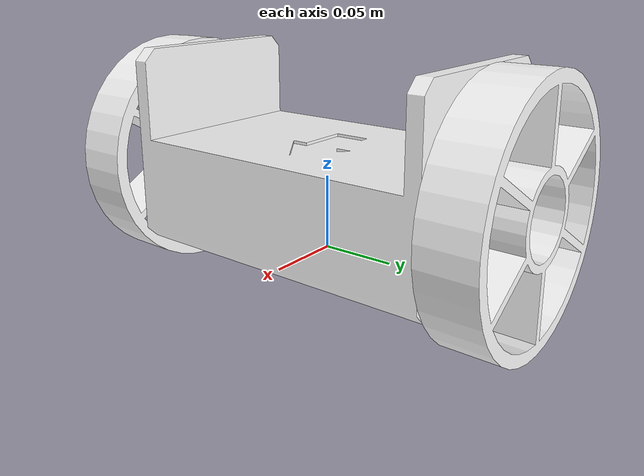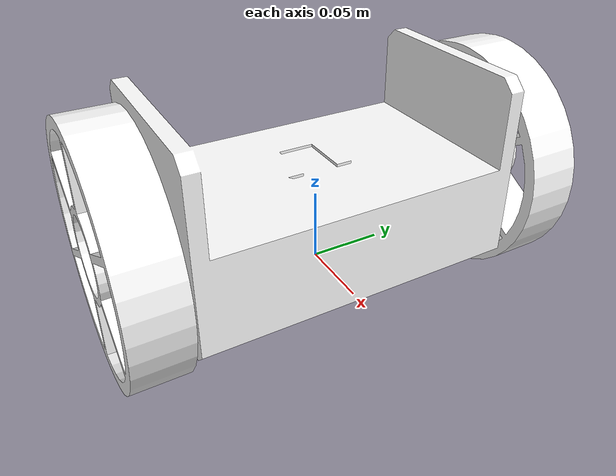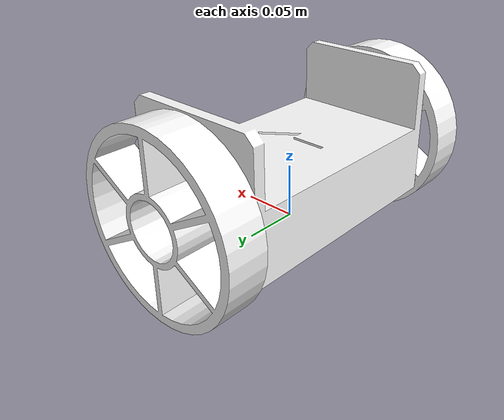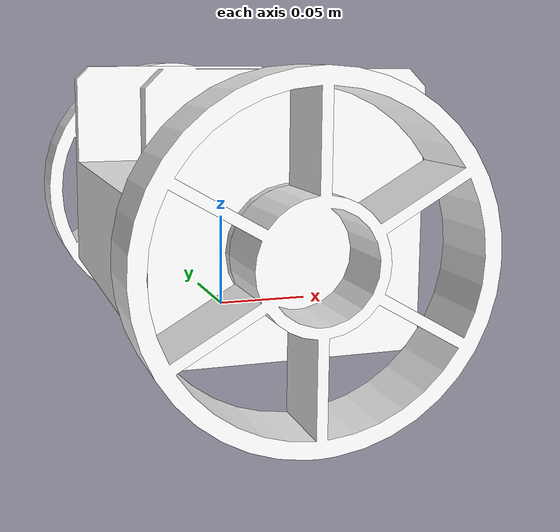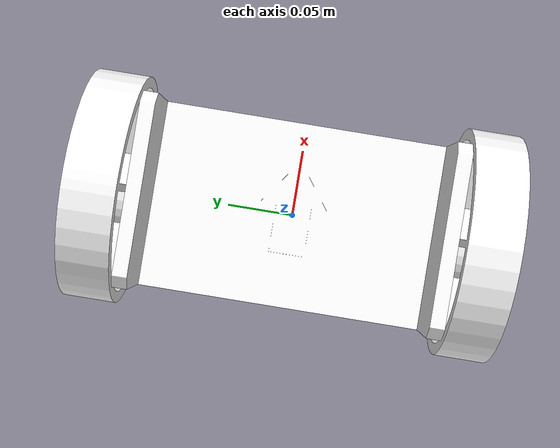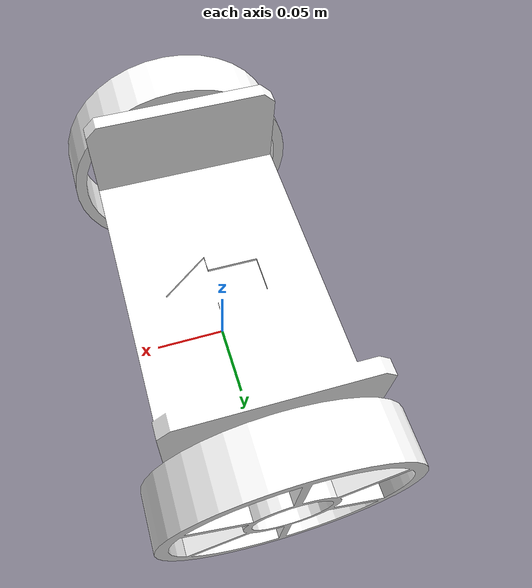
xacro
<?xml version="1.0"?>
<robot xmlns:xacro="http://www.ros.org/wiki/xacro" name="bp001">

  <!-- 引入原始机器人描述 -->
  <xacro:include
    filename="$(find bp001_description)/urdf/bp001_description.xacro"/>

  <!-- ========== Gazebo Sim 传感器与关节控制 ========== -->

  <gazebo reference="base_link">
    <sensor name="imu_sensor" type="imu">
      <always_on>true</always_on>
      <update_rate>400</update_rate>
      <topic>/imu</topic>
      <visualize>false</visualize>
    </sensor>
  </gazebo>

  <!-- 轮子摩擦（防止打滑） -->
  <gazebo reference="link_lw">
    <mu1>1.0</mu1>
    <mu2>1.0</mu2>
  </gazebo>

  <gazebo reference="link_rw">
    <mu1>1.0</mu1>
    <mu2>1.0</mu2>
  </gazebo>

  <!-- 输出 joint_state，方便 robot_state_publisher 闭环 -->
  <gazebo>
    <plugin
      filename="gz-sim-joint-state-publisher-system"
      name="gz::sim::systems::JointStatePublisher"/>
  </gazebo>

  <!-- 轮子关节速度控制器 -->
  <gazebo>
    <plugin
      filename="gz-sim-joint-controller-system"
      name="gz::sim::systems::JointController">
      <joint_name>joint_lw</joint_name>
      <use_force_commands>false</use_force_commands>
      <p_gain>0.9</p_gain>
      <i_gain>0.05</i_gain>
    </plugin>
  </gazebo>

  <gazebo>
    <plugin
      filename="gz-sim-joint-controller-system"
      name="gz::sim::systems::JointController">
      <joint_name>joint_rw</joint_name>
      <use_force_commands>false</use_force_commands>
      <p_gain>0.9</p_gain>
      <i_gain>0.05</i_gain>
    </plugin>
  </gazebo>

</robot>

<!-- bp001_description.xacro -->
<robot
  name="bp001_description">
  <link
    name="base_link">
    <inertial>
      <origin
        xyz="-3.55522513015955E-06 5.92361784514663E-19 0.0409942367796753"
        rpy="0 0 0" />
      <mass
        value="2.25389477631104" />
      <inertia
        ixx="0.0118661025979557"
        ixy="-3.33967645556664E-19"
        ixz="2.40439281764157E-07"
        iyy="0.00466922459360897"
        iyz="-9.06548460364706E-20"
        izz="0.0133992461285469" />
    </inertial>
    <visual>
      <origin
        xyz="0 0 0"
        rpy="0 0 0" />
      <geometry>
        <mesh
          filename="package://bp001_description/meshes/visual/base_link.STL" />
      </geometry>
      <material
        name="">
        <color
          rgba="1 1 1 1" />
      </material>
    </visual>
    <collision>
      <origin
        xyz="0 0 0"
        rpy="0 0 0" />
      <geometry>
        <mesh
          filename="package://bp001_description/meshes/collision/base_link.STL" />
      </geometry>
    </collision>
  </link>
  <link
    name="link_lw">
    <inertial>
      <origin
        xyz="1.52443637758642E-16 0.0173372551398928 -8.03645032440958E-17"
        rpy="0 0 0" />
      <mass
        value="0.234199193964837" />
      <inertia
        ixx="0.000548765971685728"
        ixy="1.99022370076796E-18"
        ixz="-3.48339456124935E-19"
        iyy="0.00104446027104137"
        iyz="9.34394840711479E-19"
        izz="0.000548765971685726" />
    </inertial>
    <visual>
      <origin
        xyz="0 0 0"
        rpy="0 0 0" />
      <geometry>
        <mesh
          filename="package://bp001_description/meshes/visual/link_lw.STL" />
      </geometry>
      <material
        name="">
        <color
          rgba="1 1 1 1" />
      </material>
    </visual>
    <collision>
      <origin
        xyz="0 0 0"
        rpy="0 0 0" />
      <geometry>
        <mesh
          filename="package://bp001_description/meshes/collision/link_lw.STL" />
      </geometry>
    </collision>
  </link>
  <joint
    name="joint_lw"
    type="continuous">
    <origin
      xyz="0 0.1146 0.052"
      rpy="0 0 0" />
    <parent
      link="base_link" />
    <child
      link="link_lw" />
    <axis
      xyz="0 1 0" />
    <limit
      effort="20"
      velocity="30" />
    <dynamics
      damping="0.2"
      friction="0.05" />
  </joint>
  <link
    name="link_rw">
    <inertial>
      <origin
        xyz="-5.82928507239808E-16 -0.0173372551398927 5.41772443989941E-16"
        rpy="0 0 0" />
      <mass
        value="0.234199193964837" />
      <inertia
        ixx="0.000548765971685728"
        ixy="-1.78895729887334E-18"
        ixz="1.32886565406602E-19"
        iyy="0.00104446027104137"
        iyz="1.01812824359612E-18"
        izz="0.000548765971685725" />
    </inertial>
    <visual>
      <origin
        xyz="0 0 0"
        rpy="0 0 0" />
      <geometry>
        <mesh
          filename="package://bp001_description/meshes/visual/link_rw.STL" />
      </geometry>
      <material
        name="">
        <color
          rgba="1 1 1 1" />
      </material>
    </visual>
    <collision>
      <origin
        xyz="0 0 0"
        rpy="0 0 0" />
      <geometry>
        <mesh
          filename="package://bp001_description/meshes/collision/link_rw.STL" />
      </geometry>
    </collision>
  </link>
  <joint
    name="joint_rw"
    type="continuous">
    <origin
      xyz="0 -0.1146 0.052"
      rpy="0 0 0" />
    <parent
      link="base_link" />
    <child
      link="link_rw" />
    <axis
      xyz="0 1 0" />
    <limit
      effort="20"
      velocity="30" />
    <dynamics
      damping="0.2"
      friction="0.05" />
  </joint>
</robot>
